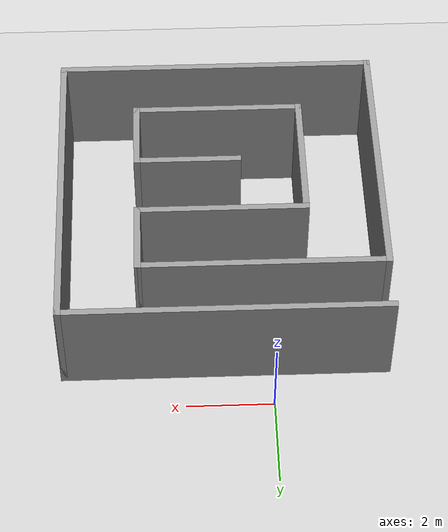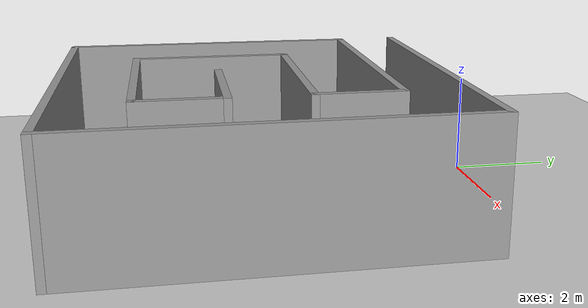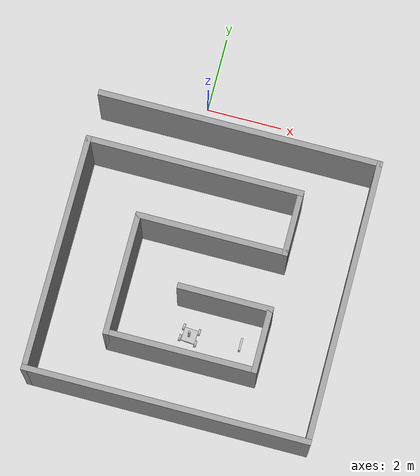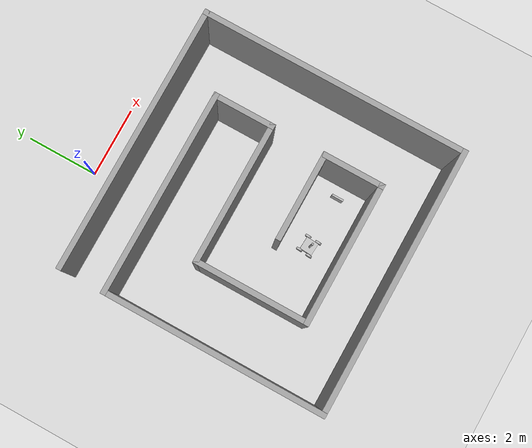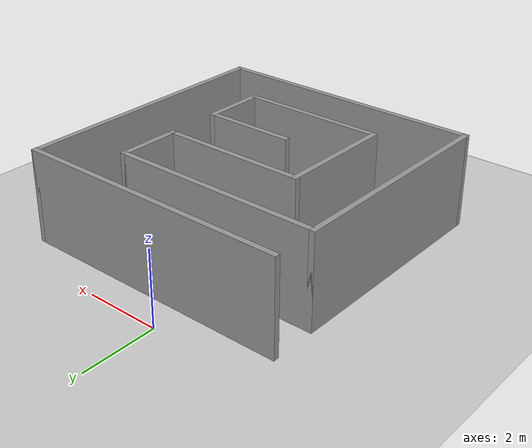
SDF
<sdf version="1.6">
 <world name="default">
  <light name="sun" type="directional">
   <pose>0 0 10 0 -0 0</pose>
   <diffuse>0.8 0.8 0.8 1</diffuse>
   <specular>0.2 0.2 0.2 1</specular>
   <attenuation>
    <range>1000</range>
    <constant>0.9</constant>
    <linear>0.01</linear>
    <quadratic>0.001</quadratic>
   </attenuation>
   <direction>-0.5 0.1 -0.9</direction>
  </light>
  <model name="ground_plane">
   <static>1</static>
   <link name="link">
    <collision name="collision">
     <geometry><plane><normal>0 0 1</normal><size>100 100</size></plane></geometry>
     <surface>
      <contact><collide_bitmask>65535</collide_bitmask></contact>
      <friction><ode><mu>100</mu><mu2>50</mu2></ode></friction>
     </surface>
    </collision>
    <visual name="visual">
     <cast_shadows>0</cast_shadows>
     <geometry><plane><normal>0 0 1</normal><size>100 100</size></plane></geometry>
     <material>
      <script><uri>file://media/materials/scripts/gazebo.material</uri><name>Gazebo/Grey</name></script>
     </material>
    </visual>
   </link>
  </model>
  <gravity>0 0 -9.8</gravity>
  <magnetic_field>6e-06 2.3e-05 -4.2e-05</magnetic_field>
  <atmosphere type="adiabatic"/>
  <physics name="default_physics" default="0" type="ode">
   <max_step_size>0.001</max_step_size>
   <real_time_factor>1</real_time_factor>
   <real_time_update_rate>1000</real_time_update_rate>
  </physics>
  <scene><ambient>0.4 0.4 0.4 1</ambient><background>0.7 0.7 0.7 1</background><shadows>1</shadows></scene>
  <audio><device>default</device></audio>
  <spherical_coordinates>
   <surface_model>EARTH_WGS84</surface_model>
   <latitude_deg>0</latitude_deg>
   <longitude_deg>0</longitude_deg>
   <elevation>0</elevation>
   <heading_deg>0</heading_deg>
  </spherical_coordinates>
  <model name="aruco">
   <pose>1.075 -4.555 0 0 -0 0</pose>
   <link name="Wall_0">
    <collision name="Wall_0_Collision">
     <geometry><box><size>7.5 0.15 2.5</size></box></geometry>
     <pose>0 0 1.25 0 -0 0</pose>
    </collision>
    <visual name="Wall_0_Visual">
     <pose>0 0 1.25 0 -0 0</pose>
     <geometry><box><size>7.5 0.15 2.5</size></box></geometry>
     <material>
      <script><uri>file://media/materials/scripts/gazebo.material</uri><name>Gazebo/Grey</name></script>
      <ambient>1 1 1 1</ambient>
     </material>
     <meta><layer>0</layer></meta>
    </visual>
    <pose>0 3.675 0 0 -0 0</pose>
   </link>
   <link name="Wall_10">
    <collision name="Wall_10_Collision">
     <geometry><box><size>1.75 0.15 2.5</size></box></geometry>
     <pose>0 0 1.25 0 -0 0</pose>
    </collision>
    <visual name="Wall_10_Visual">
     <pose>0 0 1.25 0 -0 0</pose>
     <geometry><box><size>1.75 0.15 2.5</size></box></geometry>
     <material>
      <script><uri>file://media/materials/scripts/gazebo.material</uri><name>Gazebo/Grey</name></script>
      <ambient>1 1 1 1</ambient>
     </material>
     <meta><layer>0</layer></meta>
    </visual>
    <pose>1.925 1.625 0 0 -0 -1.5708</pose>
   </link>
   <link name="Wall_11">
    <collision name="Wall_11_Collision">
     <geometry><box><size>4 0.15 2.5</size></box></geometry>
     <pose>0 0 1.25 0 -0 0</pose>
    </collision>
    <visual name="Wall_11_Visual">
     <pose>0 0 1.25 0 -0 0</pose>
     <geometry><box><size>4 0.15 2.5</size></box></geometry>
     <material>
      <script><uri>file://media/materials/scripts/gazebo.material</uri><name>Gazebo/Grey</name></script>
      <ambient>1 1 1 1</ambient>
     </material>
     <meta><layer>0</layer></meta>
    </visual>
    <pose>0 0.825 0 0 -0 3.14159</pose>
   </link>
   <link name="Wall_12">
    <collision name="Wall_12_Collision">
     <geometry><box><size>3.25 0.15 2.5</size></box></geometry>
     <pose>0 0 1.25 0 -0 0</pose>
    </collision>
    <visual name="Wall_12_Visual">
     <pose>0 0 1.25 0 -0 0</pose>
     <geometry><box><size>3.25 0.15 2.5</size></box></geometry>
     <material>
      <script><uri>file://media/materials/scripts/gazebo.material</uri><name>Gazebo/Grey</name></script>
      <ambient>1 1 1 1</ambient>
     </material>
     <meta><layer>0</layer></meta>
    </visual>
    <pose>-1.925 -0.725 0 0 -0 -1.5708</pose>
   </link>
   <link name="Wall_13">
    <collision name="Wall_13_Collision">
     <geometry><box><size>4 0.15 2.5</size></box></geometry>
     <pose>0 0 1.25 0 -0 0</pose>
    </collision>
    <visual name="Wall_13_Visual">
     <pose>0 0 1.25 0 -0 0</pose>
     <geometry><box><size>4 0.15 2.5</size></box></geometry>
     <material>
      <script><uri>file://media/materials/scripts/gazebo.material</uri><name>Gazebo/Grey</name></script>
      <ambient>1 1 1 1</ambient>
     </material>
     <meta><layer>0</layer></meta>
    </visual>
    <pose>0 -2.275 0 0 -0 0</pose>
   </link>
   <link name="Wall_14">
    <collision name="Wall_14_Collision">
     <geometry><box><size>1.75 0.15 2.5</size></box></geometry>
     <pose>0 0 1.25 0 -0 0</pose>
    </collision>
    <visual name="Wall_14_Visual">
     <pose>0 0 1.25 0 -0 0</pose>
     <geometry><box><size>1.75 0.15 2.5</size></box></geometry>
     <material>
      <script><uri>file://media/materials/scripts/gazebo.material</uri><name>Gazebo/Grey</name></script>
      <ambient>1 1 1 1</ambient>
     </material>
     <meta><layer>0</layer></meta>
    </visual>
    <pose>1.925 -1.475 0 0 -0 1.5708</pose>
   </link>
   <link name="Wall_15">
    <collision name="Wall_15_Collision">
     <geometry><box><size>2.5 0.15 2.5</size></box></geometry>
     <pose>0 0 1.25 0 -0 0</pose>
    </collision>
    <visual name="Wall_15_Visual">
     <pose>0 0 1.25 0 -0 0</pose>
     <geometry><box><size>2.5 0.15 2.5</size></box></geometry>
     <material>
      <script><uri>file://media/materials/scripts/gazebo.material</uri><name>Gazebo/Grey</name></script>
      <ambient>1 1 1 1</ambient>
     </material>
     <meta><layer>0</layer></meta>
    </visual>
    <pose>0.75 -0.675 0 0 -0 3.14159</pose>
   </link>
   <link name="Wall_5">
    <collision name="Wall_5_Collision">
     <geometry><box><size>7.5 0.15 2.5</size></box></geometry>
     <pose>0 0 1.25 0 -0 0</pose>
    </collision>
    <visual name="Wall_5_Visual">
     <pose>0 0 1.25 0 -0 0</pose>
     <geometry><box><size>7.5 0.15 2.5</size></box></geometry>
     <material>
      <script><uri>file://media/materials/scripts/gazebo.material</uri><name>Gazebo/Grey</name></script>
      <ambient>1 1 1 1</ambient>
     </material>
     <meta><layer>0</layer></meta>
    </visual>
    <pose>3.675 0 0 0 -0 -1.5708</pose>
   </link>
   <link name="Wall_6">
    <collision name="Wall_6_Collision">
     <geometry><box><size>7.5 0.15 2.5</size></box></geometry>
     <pose>0 0 1.25 0 -0 0</pose>
    </collision>
    <visual name="Wall_6_Visual">
     <pose>0 0 1.25 0 -0 0</pose>
     <geometry><box><size>7.5 0.15 2.5</size></box></geometry>
     <material>
      <script><uri>file://media/materials/scripts/gazebo.material</uri><name>Gazebo/Grey</name></script>
      <ambient>1 1 1 1</ambient>
     </material>
     <meta><layer>0</layer></meta>
    </visual>
    <pose>0 -3.675 0 0 -0 3.14159</pose>
   </link>
   <link name="Wall_8">
    <collision name="Wall_8_Collision">
     <geometry><box><size>6.25 0.15 2.5</size></box></geometry>
     <pose>0 0 1.25 0 -0 0</pose>
    </collision>
    <visual name="Wall_8_Visual">
     <pose>0 0 1.25 0 -0 0</pose>
     <geometry><box><size>6.25 0.15 2.5</size></box></geometry>
     <material>
      <script><uri>file://media/materials/scripts/gazebo.material</uri><name>Gazebo/Grey</name></script>
      <ambient>1 1 1 1</ambient>
     </material>
     <meta><layer>0</layer></meta>
    </visual>
    <pose>-3.675 -0.625 0 0 -0 1.5708</pose>
   </link>
   <link name="Wall_9">
    <collision name="Wall_9_Collision">
     <geometry><box><size>5.75 0.15 2.5</size></box></geometry>
     <pose>0 0 1.25 0 -0 0</pose>
    </collision>
    <visual name="Wall_9_Visual">
     <pose>0 0 1.25 0 -0 0</pose>
     <geometry><box><size>5.75 0.15 2.5</size></box></geometry>
     <material>
      <script><uri>file://media/materials/scripts/gazebo.material</uri><name>Gazebo/Grey</name></script>
      <ambient>1 1 1 1</ambient>
     </material>
     <meta><layer>0</layer></meta>
    </visual>
    <pose>-0.875 2.425 0 0 -0 0</pose>
   </link>
   <static>1</static>
  </model>
  <model name="unit_box">
   <pose>2.45801 -6.03964 0.870577 0.034844 0.026243 0.001125</pose>
   <link name="link">
    <inertial>
     <mass>1</mass>
     <inertia>
      <ixx>0.166667</ixx>
      <ixy>0</ixy>
      <ixz>0</ixz>
      <iyy>0.166667</iyy>
      <iyz>0</iyz>
      <izz>0.166667</izz>
     </inertia>
    </inertial>
    <collision name="collision">
     <geometry><box><size>0.0508578 0.327881 0.678954</size></box></geometry>
    </collision>
    <visual name="visual">
     <geometry><box><size>0.0508578 0.327881 0.339477</size></box></geometry>
     <material>
      <script><uri>file://scripts</uri><uri>file://textures</uri><name>aruco/standard</name></script>
     </material>
    </visual>
   </link>
  </model>
  <model name="rover">
   <link name="rover__link_0">
    <inertial>
     <pose>-0.001049 -0.003841 0.046937 0 -0 0</pose>
     <mass>0.016878</mass>
     <inertia>
      <ixx>0.000506486</ixx>
      <ixy>-4.07155e-07</ixy>
      <ixz>5.03815e-06</ixz>
      <iyy>0.000512147</iyy>
      <iyz>1.82238e-05</iyz>
      <izz>0.000318498</izz>
     </inertia>
    </inertial>
    <collision name="rover__link_0_fixed_joint_lump__rover__collision_collision">
     <pose>0.00336 -0.00541 -0.06905 0 -0 0</pose>
     <geometry><box><size>0.365433 0.357351 0.110761</size></box></geometry>
    </collision>
    <collision name="rover__link_0_fixed_joint_lump__camera_link_collision_1">
     <pose>-0.02 -0.02 0.741472 0 -0 0</pose>
     <geometry><box><size>0.05 0.05 0.05</size></box></geometry>
    </collision>
    <collision name="rover__link_0_fixed_joint_lump__rover__collision_collision_2">
     <pose>-0.00729 -0.02691 0.32674 0 -0 0</pose>
     <geometry><cylinder><length>0.741472</length><radius>0.028304</radius></cylinder></geometry>
    </collision>
    <visual name="rover__link_0_fixed_joint_lump__rover__visual_visual">
     <pose>0.00336 -0.00541 -0.06905 0 -0 0</pose>
     <geometry><box><size>0.365433 0.357351 0.110761</size></box></geometry>
    </visual>
    <visual name="rover__link_0_fixed_joint_lump__camera_link_visual_1">
     <pose>-0.02 -0.02 0.741472 0 -0 0</pose>
     <geometry><box><size>0.05 0.05 0.05</size></box></geometry>
     <material><script><uri>__default__</uri><name>__default__</name></script></material>
    </visual>
    <visual name="rover__link_0_fixed_joint_lump__rover__visual_visual_2">
     <pose>-0.00729 -0.02691 0.32674 0 -0 0</pose>
     <geometry><cylinder><length>0.741472</length><radius>0.0283044</radius></cylinder></geometry>
    </visual>
    <sensor name="camera1" type="camera">
     <update_rate>30</update_rate>
     <camera name="head">
      <horizontal_fov>1.39626</horizontal_fov>
      <image><width>800</width><height>800</height><format>R8G8B8</format></image>
      <clip><near>0.02</near><far>300</far></clip>
      <noise><type>gaussian</type><mean>0</mean><stddev>0.007</stddev></noise>
     </camera>
     <plugin name="camera_controller" filename="libgazebo_ros_camera.so">
      <alwaysOn>1</alwaysOn>
      <updateRate>0.0</updateRate>
      <cameraName>rrbot/camera1</cameraName>
      <imageTopicName>image_raw</imageTopicName>
      <cameraInfoTopicName>camera_info</cameraInfoTopicName>
      <frameName>camera_link</frameName>
      <hackBaseline>0.07</hackBaseline>
      <distortionK1>0.0</distortionK1>
      <distortionK2>0.0</distortionK2>
      <distortionK3>0.0</distortionK3>
      <distortionT1>0.0</distortionT1>
      <distortionT2>0.0</distortionT2>
      <robotNamespace>/</robotNamespace>
     </plugin>
     <pose>-0.02 -0.02 0.741472 0 -0 0</pose>
    </sensor>
   </link>
   <link name="rover__link_1">
    <pose>0.21463 -0.1606 -0.05432 0 1.56136 0</pose>
    <inertial>
     <mass>0.00170822</mass>
     <inertia>
      <ixx>3.75408e-06</ixx>
      <ixy>0</ixy>
      <ixz>0</ixz>
      <iyy>3.75408e-06</iyy>
      <iyz>0</iyz>
      <izz>6.65238e-06</izz>
     </inertia>
    </inertial>
    <collision name="rover__link_1_fixed_joint_lump__rover__collision_collision">
     <geometry><cylinder><length>0.054826</length><radius>0.088254</radius></cylinder></geometry>
    </collision>
    <visual name="rover__link_1_fixed_joint_lump__rover__visual_visual">
     <geometry><cylinder><length>0.0548257</length><radius>0.0882535</radius></cylinder></geometry>
    </visual>
   </link>
   <joint name="rover__link_0_JOINT_2" type="revolute">
    <child>rover__link_1</child>
    <parent>rover__link_0</parent>
    <axis>
     <xyz>-6e-06 0 0.999994</xyz>
     <limit>
      <lower>-1.79769e+308</lower>
      <upper>1.79769e+308</upper>
      <effort>-1</effort>
      <velocity>-1</velocity>
     </limit>
     <dynamics><spring_reference>0</spring_reference><spring_stiffness>0</spring_stiffness></dynamics>
     <use_parent_model_frame>1</use_parent_model_frame>
    </axis>
   </joint>
   <link name="rover__link_1_clone">
    <pose>0.21563 0.15727 -0.06313 0 1.56136 0</pose>
    <inertial>
     <mass>0.00170822</mass>
     <inertia>
      <ixx>3.75408e-06</ixx>
      <ixy>0</ixy>
      <ixz>0</ixz>
      <iyy>3.75408e-06</iyy>
      <iyz>0</iyz>
      <izz>6.65238e-06</izz>
     </inertia>
    </inertial>
    <collision name="rover__link_1_clone_fixed_joint_lump__rover__collision_collision">
     <geometry><cylinder><length>0.054826</length><radius>0.088253</radius></cylinder></geometry>
    </collision>
    <visual name="rover__link_1_clone_fixed_joint_lump__rover__visual_visual">
     <geometry><cylinder><length>0.0548257</length><radius>0.0882535</radius></cylinder></geometry>
    </visual>
   </link>
   <joint name="rover__link_0_JOINT_3" type="revolute">
    <child>rover__link_1_clone</child>
    <parent>rover__link_0</parent>
    <axis>
     <xyz>-6e-06 0 0.999994</xyz>
     <limit>
      <lower>-1.79769e+308</lower>
      <upper>1.79769e+308</upper>
      <effort>-1</effort>
      <velocity>-1</velocity>
     </limit>
     <dynamics><spring_reference>0</spring_reference><spring_stiffness>0</spring_stiffness></dynamics>
     <use_parent_model_frame>1</use_parent_model_frame>
    </axis>
   </joint>
   <link name="rover__link_1_clone_0">
    <pose>-0.21854 -0.13393 -0.07041 0 1.56136 0</pose>
    <inertial>
     <mass>0.00170822</mass>
     <inertia>
      <ixx>3.75408e-06</ixx>
      <ixy>0</ixy>
      <ixz>0</ixz>
      <iyy>3.75408e-06</iyy>
      <iyz>0</iyz>
      <izz>6.65238e-06</izz>
     </inertia>
    </inertial>
    <collision name="rover__link_1_clone_0_fixed_joint_lump__rover__collision_collision">
     <geometry><cylinder><length>0.054826</length><radius>0.088253</radius></cylinder></geometry>
    </collision>
    <visual name="rover__link_1_clone_0_fixed_joint_lump__rover__visual_visual">
     <geometry><cylinder><length>0.0548257</length><radius>0.0882535</radius></cylinder></geometry>
    </visual>
   </link>
   <joint name="rover__link_0_JOINT_4" type="revolute">
    <child>rover__link_1_clone_0</child>
    <parent>rover__link_0</parent>
    <axis>
     <xyz>-6e-06 0 0.999994</xyz>
     <limit>
      <lower>-1.79769e+308</lower>
      <upper>1.79769e+308</upper>
      <effort>-1</effort>
      <velocity>-1</velocity>
     </limit>
     <dynamics><spring_reference>0</spring_reference><spring_stiffness>0</spring_stiffness></dynamics>
     <use_parent_model_frame>1</use_parent_model_frame>
    </axis>
   </joint>
   <link name="rover__link_1_clone_0_clone">
    <pose>-0.20779 0.16959 -0.06981 0 1.56136 0</pose>
    <inertial>
     <mass>0.00170822</mass>
     <inertia>
      <ixx>3.75408e-06</ixx>
      <ixy>0</ixy>
      <ixz>0</ixz>
      <iyy>3.75408e-06</iyy>
      <iyz>0</iyz>
      <izz>6.65238e-06</izz>
     </inertia>
    </inertial>
    <collision name="rover__link_1_clone_0_clone_fixed_joint_lump__rover__collision_collision">
     <geometry><cylinder><length>0.054826</length><radius>0.088253</radius></cylinder></geometry>
    </collision>
    <visual name="rover__link_1_clone_0_clone_fixed_joint_lump__rover__visual_visual">
     <geometry><cylinder><length>0.0548257</length><radius>0.0882535</radius></cylinder></geometry>
    </visual>
   </link>
   <joint name="rover__link_0_JOINT_5" type="revolute">
    <child>rover__link_1_clone_0_clone</child>
    <parent>rover__link_0</parent>
    <axis>
     <xyz>-6e-06 0 0.999994</xyz>
     <limit>
      <lower>-1.79769e+308</lower>
      <upper>1.79769e+308</upper>
      <effort>-1</effort>
      <velocity>-1</velocity>
     </limit>
     <dynamics><spring_reference>0</spring_reference><spring_stiffness>0</spring_stiffness></dynamics>
     <use_parent_model_frame>1</use_parent_model_frame>
    </axis>
   </joint>
   <pose>1.08844 -6.01246 0.15458 0.027815 0.035402 -0.069876</pose>
  </model>
 </world>
</sdf>
